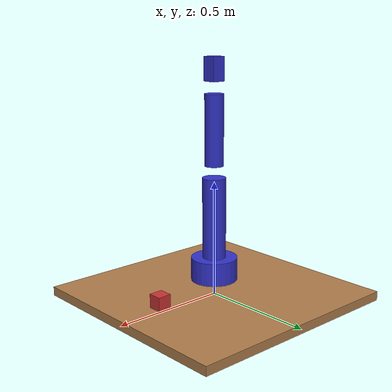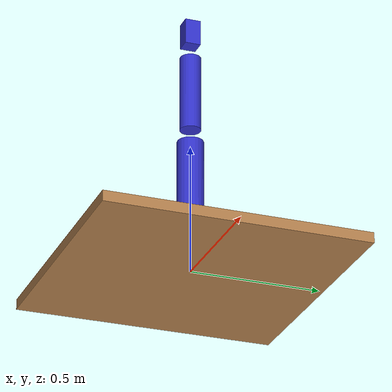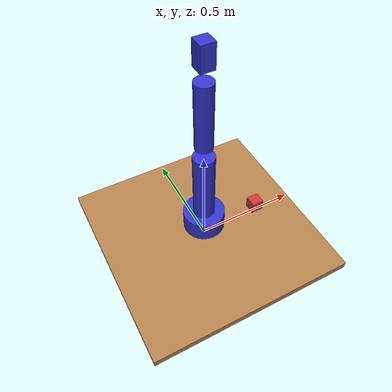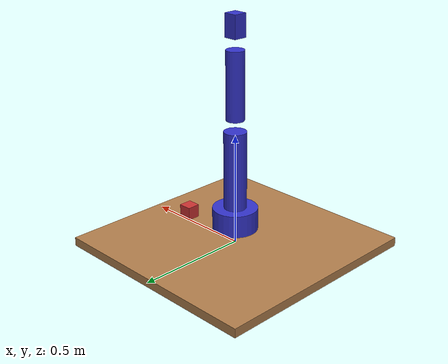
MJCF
<?xml version="1.0" encoding="UTF-8"?>
<mujoco model="G1_Manipulation_Model">
  <compiler angle="radian" coordinate="local" meshdir="assets/meshes/"/>

  <!-- Définition des matériaux -->
  <asset>
    <material name="table_material" rgba="0.7 0.5 0.3 1"/>
    <material name="robot_material" rgba="0.2 0.2 0.8 1"/>
    <material name="object_material" rgba="0.8 0.2 0.2 1"/>
  </asset>

  <!-- Définition des corps avec des masses appropriées -->
  <worldbody>
    <!-- Table de base -->
    <body name="table" pos="0 0 0">
      <inertial pos="0 0 0.01" mass="50.0" diaginertia="1.0 1.0 1.0"/>
      <geom name="table_geom" type="box" size="0.5 0.5 0.02"
            pos="0 0 0" material="table_material"/>
    </body>

    <!-- Robot G1 (simplifié) -->
    <body name="robot_base" pos="0 0 0.02">
      <inertial pos="0 0 0.1" mass="25.0" diaginertia="0.5 0.5 0.5"/>
      <geom name="base_geom" type="cylinder" size="0.1 0.05"
            pos="0 0 0.1" material="robot_material"/>

      <!-- Bras principal -->
      <body name="arm_base" pos="0 0 0.2">
        <inertial pos="0 0 0.1" mass="10.0" diaginertia="0.2 0.2 0.2"/>
        <geom name="arm_geom" type="cylinder" size="0.05 0.2"
              pos="0 0 0.1" material="robot_material"/>
        <joint name="arm_joint" type="hinge" axis="0 0 1" pos="0 0 0" range="-3.14 3.14"/>

        <!-- Avant-bras -->
        <body name="forearm" pos="0 0 0.4">
          <inertial pos="0 0 0.1" mass="8.0" diaginertia="0.15 0.15 0.15"/>
          <geom name="forearm_geom" type="cylinder" size="0.04 0.15"
                pos="0 0 0.1" material="robot_material"/>
          <joint name="forearm_joint" type="hinge" axis="0 0 1" pos="0 0 0" range="-3.14 3.14"/>

          <!-- Main avec capteurs de force -->
          <body name="hand" pos="0 0 0.3">
            <inertial pos="0 0 0.05" mass="5.0" diaginertia="0.1 0.1 0.1"/>
            <geom name="hand_geom" type="box" size="0.03 0.03 0.05"
                  pos="0 0 0.05" material="robot_material"/>
            <joint name="hand_joint" type="hinge" axis="0 0 1" pos="0 0 0" range="-3.14 3.14"/>

            <!-- Capteurs de force sur les doigts - masses augmentées -->
            <body name="left_thumb" pos="0.02 0 0.05">
              <inertial pos="0 0 0.01" mass="1.0" diaginertia="0.01 0.01 0.01"/>
              <geom name="thumb_geom" type="sphere" size="0.01"
                    pos="0 0 0.01" material="robot_material"/>
              <site name="thumb_force_site" pos="0 0 0.01" size="0.005"/>
            </body>

            <body name="right_thumb" pos="-0.02 0 0.05">
              <inertial pos="0 0 0.01" mass="1.0" diaginertia="0.01 0.01 0.01"/>
              <geom name="thumb2_geom" type="sphere" size="0.01"
                    pos="0 0 0.01" material="robot_material"/>
              <site name="thumb2_force_site" pos="0 0 0.01" size="0.005"/>
            </body>
          </body>
        </body>
      </body>
    </body>

    <!-- Objet à manipuler -->
    <body name="target_object" pos="0.3 0 0.02">
      <inertial pos="0 0 0.02" mass="2.0" diaginertia="0.02 0.02 0.02"/>
      <geom name="object_geom" type="box" size="0.03 0.03 0.04"
            pos="0 0 0.02" material="object_material"/>
      <joint name="object_joint" type="free"/>
    </body>
  </worldbody>

  <!-- Définition des actuateurs -->
  <actuator>
    <motor name="arm_motor" joint="arm_joint" gear="100"/>
    <motor name="forearm_motor" joint="forearm_joint" gear="100"/>
    <motor name="hand_motor" joint="hand_joint" gear="50"/>
  </actuator>

  <!-- Définition des capteurs -->
  <sensor>
    <force name="thumb_force" site="thumb_force_site"/>
    <force name="thumb2_force" site="thumb2_force_site"/>
  </sensor>

  <!-- Définition des contacts -->
  <contact>
    <pair name="hand_object" geom1="hand_geom" geom2="object_geom"/>
    <pair name="table_object" geom1="table_geom" geom2="object_geom"/>
  </contact>
</mujoco>
